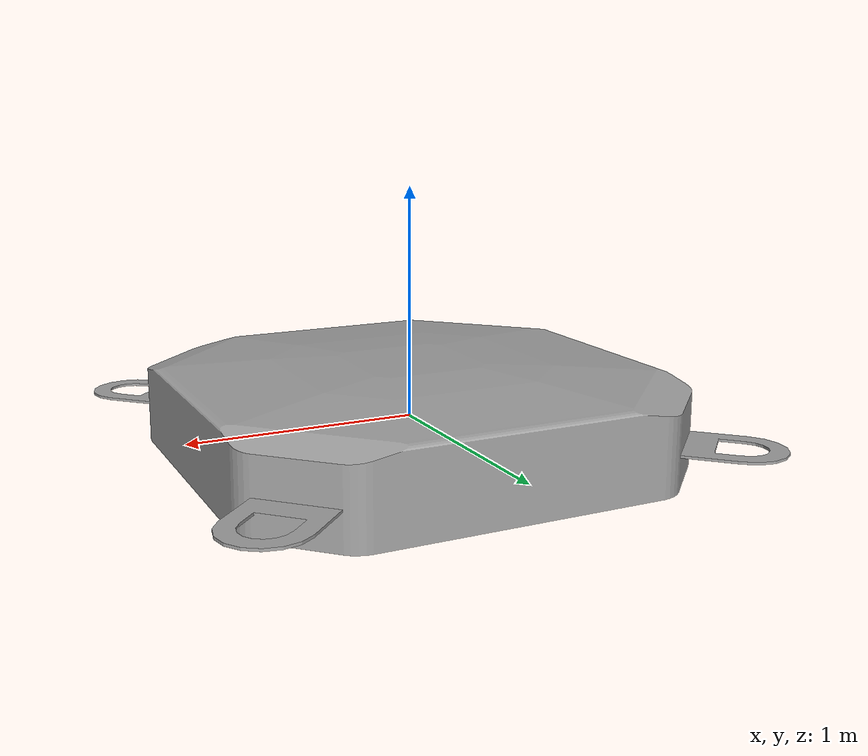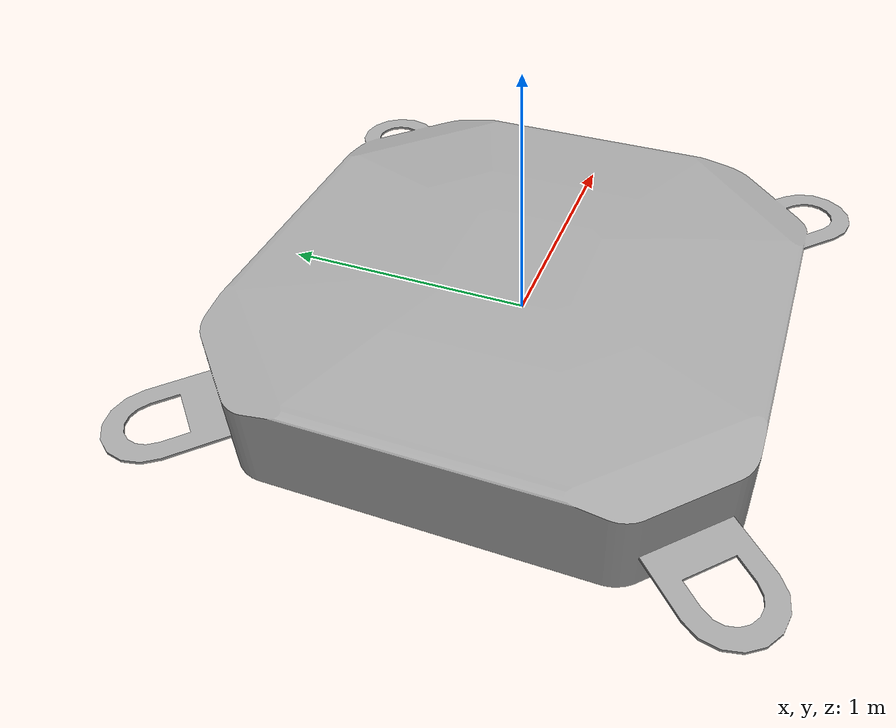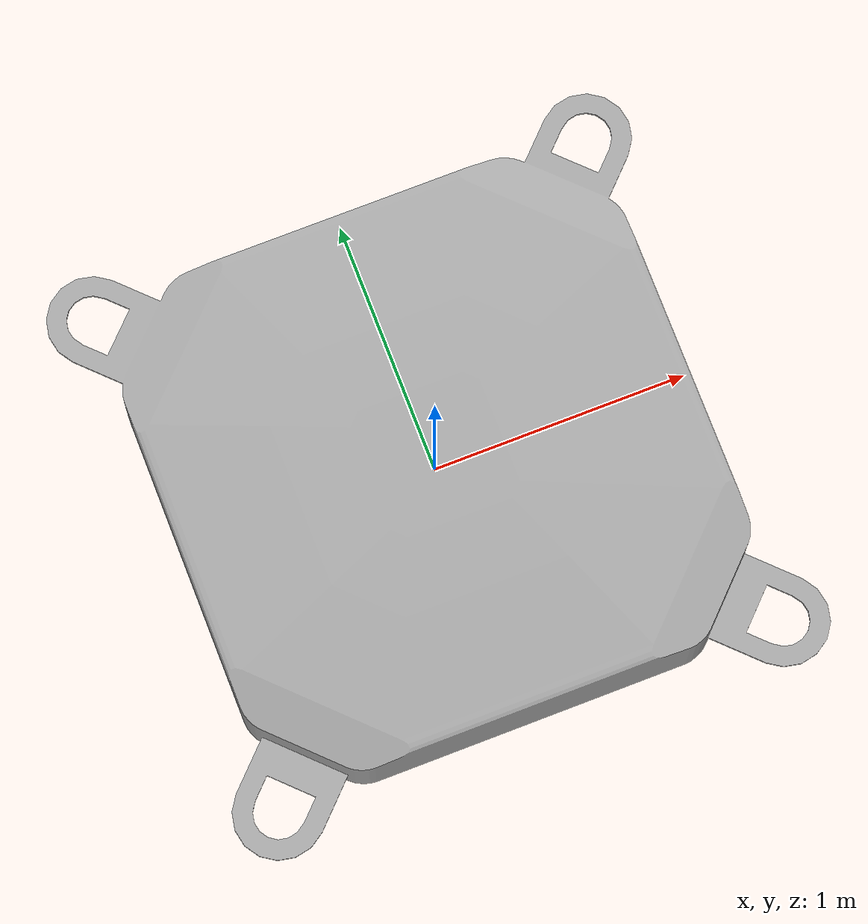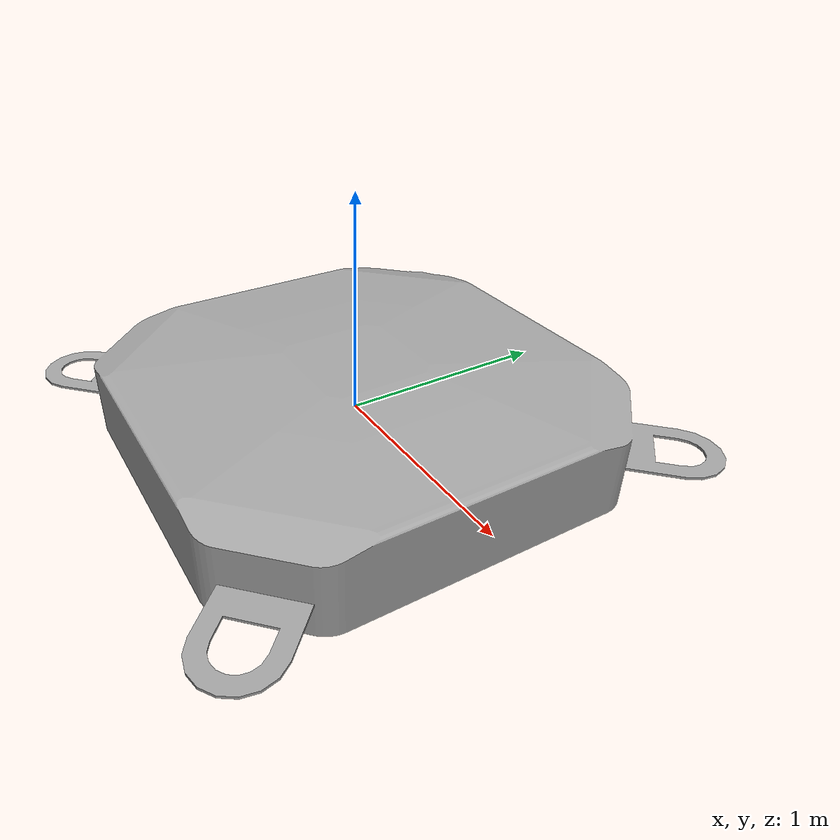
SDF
<?xml version="1.0"?>
<sdf version="1.5">
  <model name="dock_block">
    <static>true</static>
    <pose>0 0 0.25 0 0 0</pose>
    <link name="link">
      <visual name="visual">
        <geometry>
          <mesh>
            <scale>4 4 1</scale>
            <uri>file://dock_block/mesh/dock_block.dae</uri>
          </mesh>
        </geometry>
      </visual>
    </link>
  </model>
</sdf>
